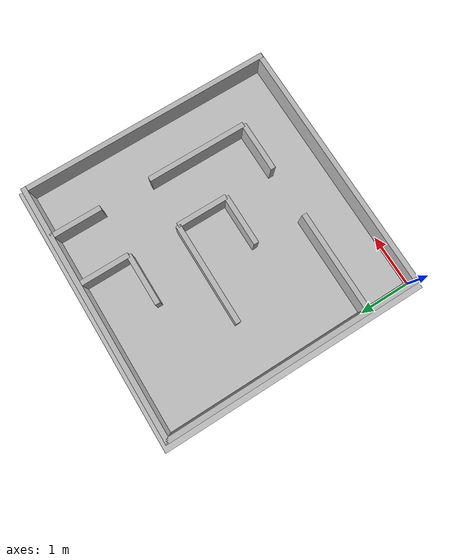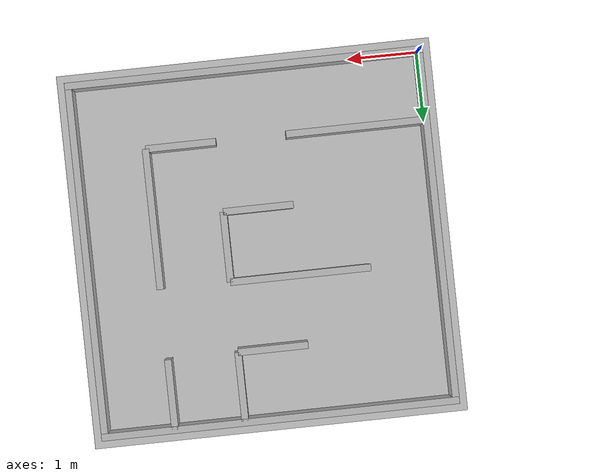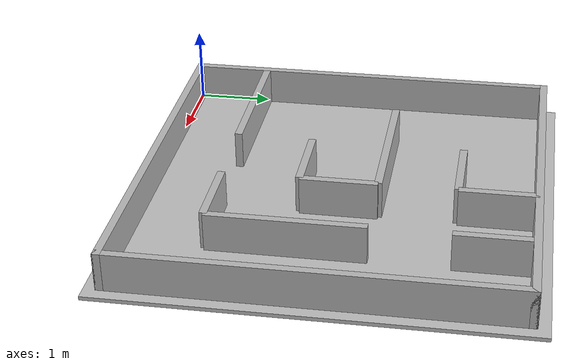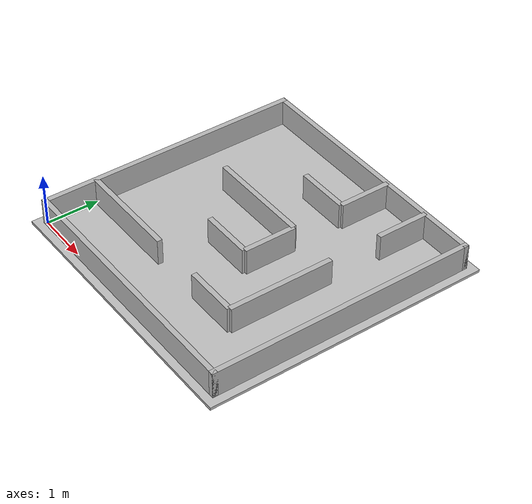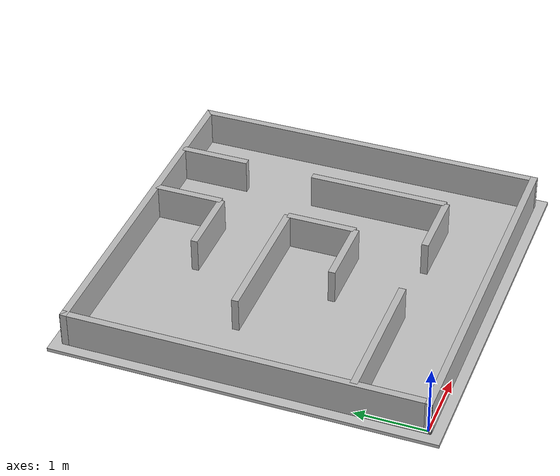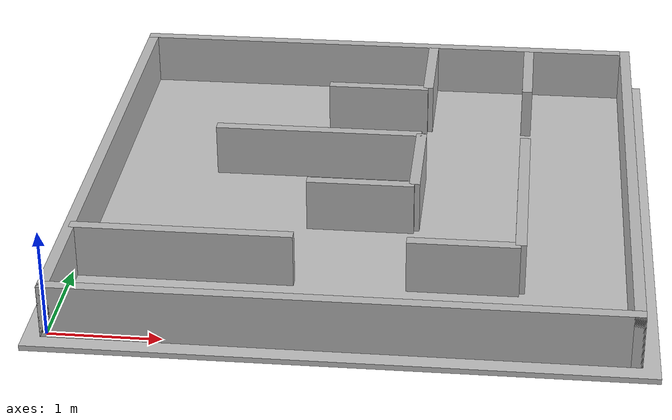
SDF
<?xml version="1.0" ?>
<sdf version="1.6">

  <world name="maze_world">

    <!-- ================= PHYSICS ================= -->

    <physics name="default_physics" type="ode">
      <max_step_size>0.001</max_step_size>
      <real_time_factor>1.0</real_time_factor>
      <real_time_update_rate>1000</real_time_update_rate>
      <ode>
        <solver>
          <type>quick</type>
          <iters>150</iters>
          <sor>1.3</sor>
        </solver>
        <constraints>
          <cfm>0.0</cfm>
          <erp>0.2</erp>
          <contact_max_correcting_vel>100</contact_max_correcting_vel>
          <contact_surface_layer>0.001</contact_surface_layer>
        </constraints>
      </ode>
    </physics>

    <!-- ================= ROS STATE PLUGIN ================= -->

    <plugin name="gazebo_ros_state" filename="libgazebo_ros_state.so">
      <ros>
        <namespace>/</namespace>
      </ros>
      <update_rate>1.0</update_rate>
    </plugin>

    <!-- ================= DEFAULT VIEW ================= -->

    <!-- Opens gzclient looking straight down at the maze center, so
         the view is consistent every time regardless of how the
         camera was last left in a previous session. -->
    <gui>
      <camera name="user_camera">
        <pose>2.5 2.5 8.0 0 1.5708 0</pose>
      </camera>
    </gui>

    <!-- ================= LIGHT ================= -->

    <include>
      <uri>model://sun</uri>
    </include>

    <!-- ================= FLOOR ================= -->

    <model name="ground">

      <static>true</static>

      <link name="ground_link">

        <collision name="ground_collision">
          <geometry>
            <box>
              <size>5.4 5.4 0.05</size>
            </box>
          </geometry>
        </collision>

        <visual name="ground_visual">
          <geometry>
            <box>
              <size>5.4 5.4 0.05</size>
            </box>
          </geometry>

          <material>
            <ambient>0.75 0.75 0.75 1</ambient>
            <diffuse>0.75 0.75 0.75 1</diffuse>
          </material>
        </visual>

        <pose>2.5 2.5 -0.025 0 0 0</pose>

      </link>

    </model>

    <!-- OUTER WALLS                                       -->

    <!-- TOP -->

    <model name="top_wall">
      <static>true</static>

      <link name="link">

        <collision name="collision">
          <geometry>
            <box>
              <size>5.1 0.10 0.50</size>
            </box>
          </geometry>
        </collision>

        <visual name="visual">
          <geometry>
            <box>
              <size>5.1 0.10 0.50</size>
            </box>
          </geometry>
        </visual>

      </link>

      <pose>2.5 5.0 0.25 0 0 0</pose>

    </model>

    <!-- BOTTOM -->

    <model name="bottom_wall">
      <static>true</static>

      <link name="link">

        <collision name="collision">
          <geometry>
            <box>
              <size>5.1 0.10 0.50</size>
            </box>
          </geometry>
        </collision>

        <visual name="visual">
          <geometry>
            <box>
              <size>5.1 0.10 0.50</size>
            </box>
          </geometry>
        </visual>

      </link>

      <pose>2.5 0.0 0.25 0 0 0</pose>

    </model>

    <!-- LEFT -->

    <model name="left_wall">
      <static>true</static>

      <link name="link">

        <collision name="collision">
          <geometry>
            <box>
              <size>0.10 5.1 0.50</size>
            </box>
          </geometry>
        </collision>

        <visual name="visual">
          <geometry>
            <box>
              <size>0.10 5.1 0.50</size>
            </box>
          </geometry>
        </visual>

      </link>

      <pose>0.0 2.5 0.25 0 0 0</pose>

    </model>

    <!-- RIGHT -->

    <model name="right_wall">
      <static>true</static>

      <link name="link">

        <collision name="collision">
          <geometry>
            <box>
              <size>0.10 5.1 0.50</size>
            </box>
          </geometry>
        </collision>

        <visual name="visual">
          <geometry>
            <box>
              <size>0.10 5.1 0.50</size>
            </box>
          </geometry>
        </visual>

      </link>

      <pose>5.0 2.5 0.25 0 0 0</pose>

    </model>

    <!-- INNER WALL 1                                      -->

    <model name="wall_D1_D2">
      <static>true</static>

      <link name="link">

        <collision name="collision">
          <geometry>
            <box>
              <size>0.10 1.0 0.50</size>
            </box>
          </geometry>
        </collision>

        <visual name="visual">
          <geometry>
            <box>
              <size>0.10 1.0 0.50</size>
            </box>
          </geometry>
        </visual>

      </link>

      <pose>3.0 4.5 0.25 0 0 0</pose>

    </model>

    <!-- INNER WALL 2                                      -->

    <model name="wall_E1_E2">
      <static>true</static>

      <link name="link">

        <collision name="collision">
          <geometry>
            <box>
              <size>0.10 1.0 0.50</size>
            </box>
          </geometry>
        </collision>

        <visual name="visual">
          <geometry>
            <box>
              <size>0.10 1.0 0.50</size>
            </box>
          </geometry>
        </visual>

      </link>

      <pose>4.0 4.5 0.25 0 0 0</pose>

    </model>

    <!-- INNER WALL 3                                      -->

    <model name="wall_C2_D2">
      <static>true</static>

      <link name="link">

        <collision name="collision">
          <geometry>
            <box>
              <size>1.0 0.10 0.50</size>
            </box>
          </geometry>
        </collision>

        <visual name="visual">
          <geometry>
            <box>
              <size>1.0 0.10 0.50</size>
            </box>
          </geometry>
        </visual>

      </link>

      <pose>2.5 4.0 0.25 0 0 0</pose>

    </model>

    <!-- INNER WALL 4                                      -->

    <model name="wall_B3_D3">
      <static>true</static>

      <link name="link">

        <collision name="collision">
          <geometry>
            <box>
              <size>2.0 0.10 0.50</size>
            </box>
          </geometry>
        </collision>

        <visual name="visual">
          <geometry>
            <box>
              <size>2.0 0.10 0.50</size>
            </box>
          </geometry>
        </visual>

      </link>

      <pose>2.0 3.0 0.25 0 0 0</pose>

    </model>

    <!-- INNER WALL 5                                      -->

    <model name="wall_D3_D4">
      <static>true</static>

      <link name="link">

        <collision name="collision">
          <geometry>
            <box>
              <size>0.10 1.0 0.50</size>
            </box>
          </geometry>
        </collision>

        <visual name="visual">
          <geometry>
            <box>
              <size>0.10 1.0 0.50</size>
            </box>
          </geometry>
        </visual>

      </link>

      <pose>3.0 2.5 0.25 0 0 0</pose>

    </model>

    <!-- INNER WALL 6                                      -->

    <model name="wall_E3_E5">
      <static>true</static>

      <link name="link">

        <collision name="collision">
          <geometry>
            <box>
              <size>0.10 2.0 0.50</size>
            </box>
          </geometry>
        </collision>

        <visual name="visual">
          <geometry>
            <box>
              <size>0.10 2.0 0.50</size>
            </box>
          </geometry>
        </visual>

      </link>

      <pose>4.0 2.0 0.25 0 0 0</pose>

    </model>

    <!-- INNER WALL 7                                      -->

    <model name="wall_C4_D4">
      <static>true</static>

      <link name="link">

        <collision name="collision">
          <geometry>
            <box>
              <size>1.0 0.10 0.50</size>
            </box>
          </geometry>
        </collision>

        <visual name="visual">
          <geometry>
            <box>
              <size>1.0 0.10 0.50</size>
            </box>
          </geometry>
        </visual>

      </link>

      <pose>2.5 2.0 0.25 0 0 0</pose>

    </model>

    <!-- INNER WALL 8                                      -->

    <model name="wall_A5_C5">
      <static>true</static>

      <link name="link">

        <collision name="collision">
          <geometry>
            <box>
              <size>2.0 0.10 0.50</size>
            </box>
          </geometry>
        </collision>

        <visual name="visual">
          <geometry>
            <box>
              <size>2.0 0.10 0.50</size>
            </box>
          </geometry>
        </visual>

      </link>

      <pose>1.0 1.0 0.25 0 0 0</pose>

    </model>

    <!-- INNER WALL 9                                      -->

    <model name="wall_D5_E5">
      <static>true</static>

      <link name="link">

        <collision name="collision">
          <geometry>
            <box>
              <size>1.0 0.10 0.50</size>
            </box>
          </geometry>
        </collision>

        <visual name="visual">
          <geometry>
            <box>
              <size>1.0 0.10 0.50</size>
            </box>
          </geometry>
        </visual>

      </link>

      <pose>3.5 1.0 0.25 0 0 0</pose>

    </model>

  </world>

</sdf>
